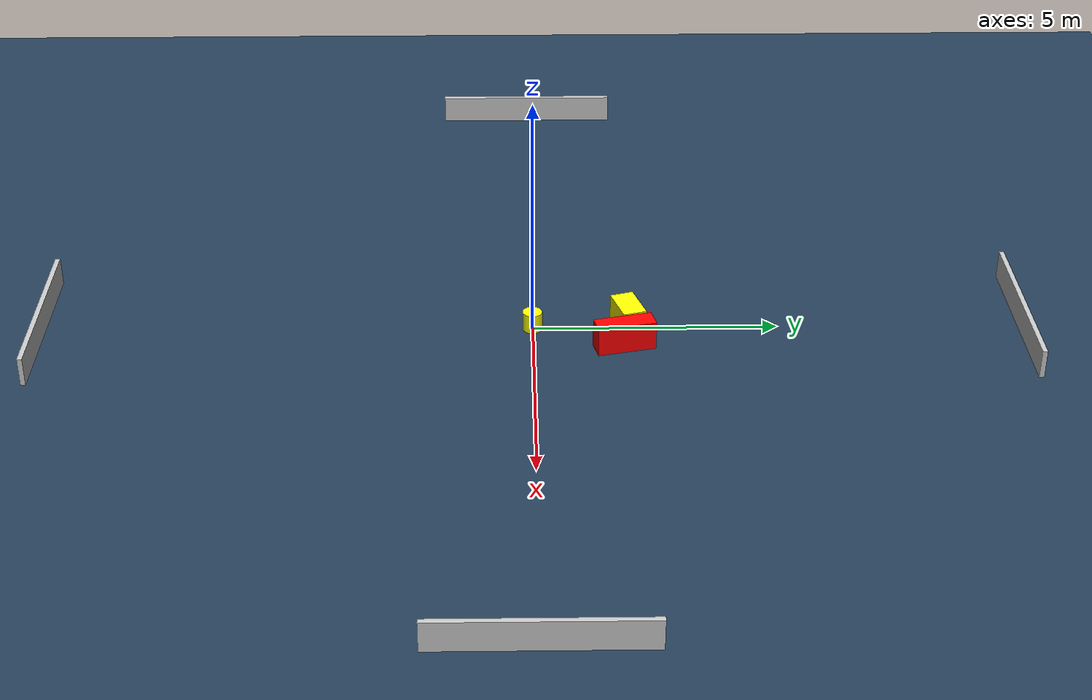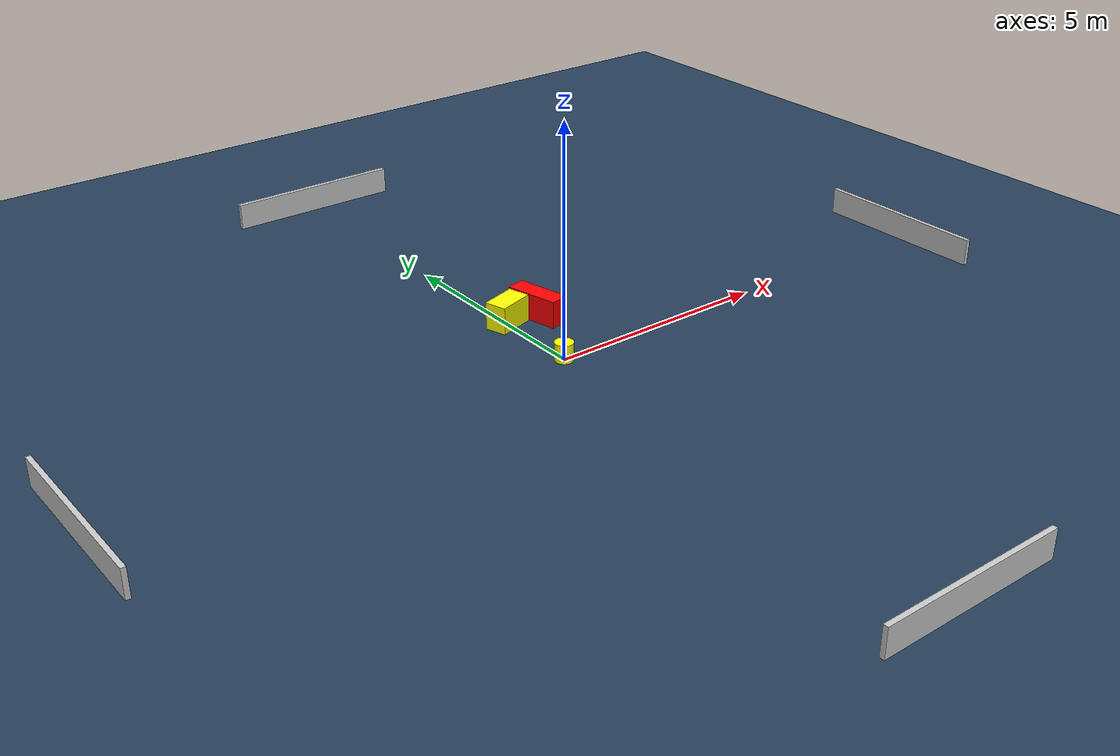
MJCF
<?xml version="1.0" ?>
<mujoco model="generated_environment">
  <option timestep="0.01" integrator="RK4" cone="elliptic"/>
  <default>
    <geom density="1"/>
  </default>
  <asset>
    <texture builtin="gradient" height="3072" name="skybox" rgb1="0.3 0.5 0.7" rgb2="0 0 0" type="skybox" width="512"/>
    <texture builtin="checker" height="300" name="groundplane" rgb1="0.2 0.3 0.4" rgb2="0.1 0.2 0.3" type="2d" width="300"/>
    <material name="groundplane" reflectance="0.2" texrepeat="5 5" texture="groundplane"/>
  </asset>
  <worldbody>
    <light dir="0 0 -1" directional="true" pos="0 0 1.5"/>
    <geom condim="3" friction="0.5 0.005 0.001" material="groundplane" name="floor" pos="0 0 0" size="0 0 0.05" type="plane"/>
    <body name="walls">
      <geom name="wall_1" condim="4" pos="-10.0 0.0 0.3" rgba="0.800000011920929 0.800000011920929 0.800000011920929 1.0" size="0.05 2.0 0.3" type="box"/>
      <geom name="wall_2" condim="4" pos="10.0 0.0 0.3" rgba="0.800000011920929 0.800000011920929 0.800000011920929 1.0" size="0.05 2.0 0.3" type="box"/>
      <geom name="wall_3" condim="4" pos="0.0 -10.0 0.3" rgba="0.800000011920929 0.800000011920929 0.800000011920929 1.0" size="2.0 0.05 0.3" type="box"/>
      <geom name="wall_4" condim="4" pos="0.0 10.0 0.3" rgba="0.800000011920929 0.800000011920929 0.800000011920929 1.0" size="2.0 0.05 0.3" type="box"/>
    </body>
    <body name="robot">
      <joint name="joint_x" type="slide" pos="0 0 0" axis="1 0 0"/>
      <joint name="joint_y" type="slide" pos="0 0 0" axis="0 1 0"/>
      <geom name="robot" type="cylinder" pos="0.0 0.0 0.2" size="0.2 0.2 0.0" mass="5.0" friction="1.0 0.005 0.0001" condim="4" rgba="1.0 1.0 0.0 1.0"/>
    </body>
    <body name="obstacle_1_movable">
      <geom name="obstacle_1_movable" condim="4" pos="0.02498418862137655 1.949483670084586 0.3" euler="0 0 16.870934438016732" friction="0.0 0.005 0.001" rgba="1.0 1.0 0.0 1.0" size="0.40969283257749944 0.2430115723493458 0.3" type="box" mass="0.1"/>
      <joint type="free"/>
    </body>
    <body name="obstacle_2_static">
      <geom name="obstacle_2_static" condim="4" pos="0.7338182068152942 1.8468703658542787 0.3" euler="0 0 193.0424309007082" friction="0.0 0.005 0.001" rgba="1.0 0.0 0.0 1.0" size="0.2109305203772323 0.6015409720751983 0.3" type="box"/>
    </body>
  </worldbody>
  <actuator>
    <motor name="actuator_x" joint="joint_x" gear="1" ctrlrange="-1 1"/>
    <motor name="actuator_y" joint="joint_y" gear="1" ctrlrange="-1 1"/>
  </actuator>
</mujoco>
